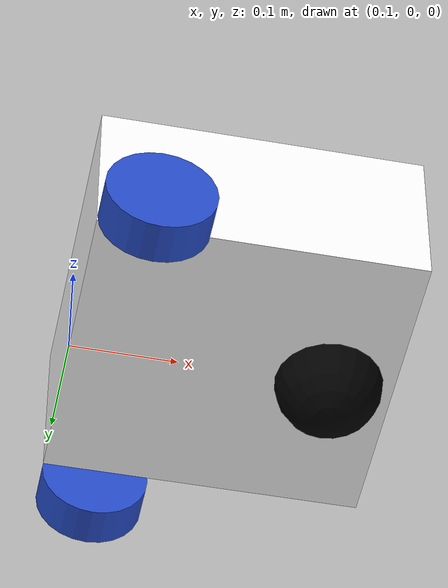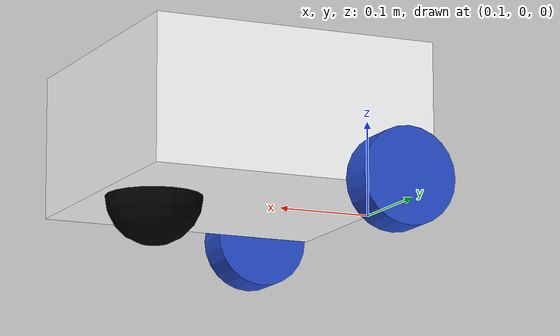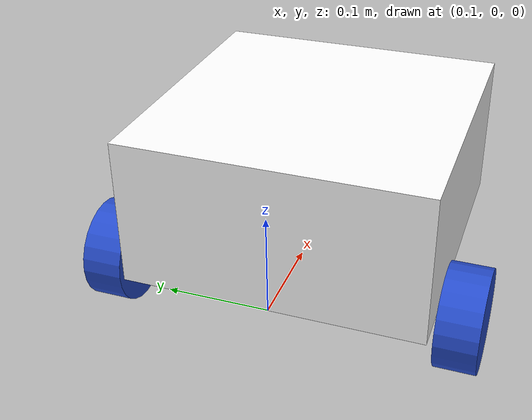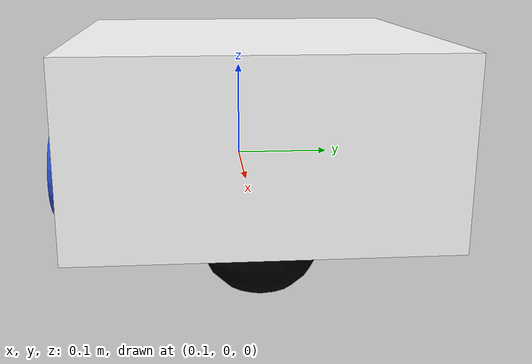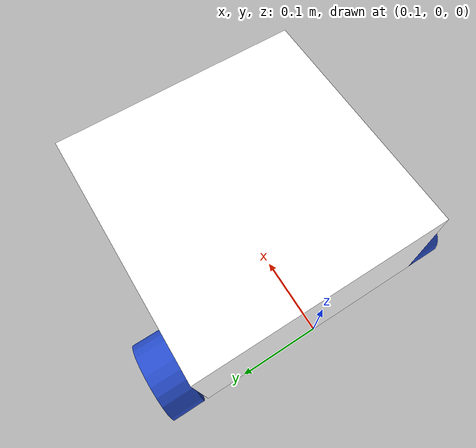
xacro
<?xml version="1.0"?>
<robot xmlns:xacro="http://www.ros.org/wiki/xacro">

    <xacro:include filename="inertial_macros.xacro"/>

    <material name = "white">
        <color rgba="1 1 1 1"/>
    </material>
    <material name = "orange">
        <color rgba="1 0.3 0.1 1"/>
    </material>
    <material name = "blue">
        <color rgba="0.2 0.2 1 1"/>
    </material>
    <material name = "black">
        <color rgba="0 0 0 1"/>
    </material>

    <!-- base link-->
    <link name="base_link">

    </link>

    <!-- chassis link-->

    <joint name="chassis_joint" type="fixed">
        <parent link="base_link"/>
        <child link="chassis"/>
        <origin xyz="0.1 0.0 0.0"/>
    </joint>

    <link name="chassis">
        <visual>
            <origin xyz="0.15 0.0 0.075"/>
            <geometry>
                <box size="0.3 0.3 0.15"/>
            </geometry>
            <material name="white"/>
        </visual>
        <collision>
            <origin xyz="0.15 0.0 0.075"/>
            <geometry>
                <box size="0.3 0.3 0.15"/>
            </geometry>
            <material name="white"/>
        </collision>
        <xacro:inertial_box mass="0.5" x="0.3" y="0.3" z="0.15">
            <origin xyz="0.15 0.0 0.75" rpy="0.0 0.0 0.0"/>

        </xacro:inertial_box>
    </link>
    <gazebo reference="chassis">
        <material>
            Gazebo/White
        </material>
    </gazebo>

    <!-- Left wheel link-->

    <joint name='left_wheel_joint' type='continuous'>
        <parent link="base_link"/>
        <child link="left_wheel"/>
        <origin xyz="0.15 0.175 0.0" rpy="-${pi/2} 0.0 0.0"/>
        <axis xyz="0.0 0.0 1.0"/>

    </joint>

    <link name="left_wheel">
        <visual>
            <geometry>
                <cylinder radius="0.05" length="0.04"/>
            </geometry>
            <materal name = "blue"/>
        </visual>
        <collision>
            <geometry>
                <cylinder radius="0.05" length="0.04"/>
            </geometry>
            <materal name = "blue"/>
        </collision>
        <xacro:inertial_cylinder mass="0.1" radius="0.05" length="0.04">
            <origin xyz="0.0 0.0 0.0" rpy="0.0 0.0 0.0"/>
        </xacro:inertial_cylinder>
    </link>
    <gazebo reference="left_wheel">
        <material>
            Gazebo/Blue
        </material>
    </gazebo>

    <!-- Right wheel link-->

    <joint name='right_wheel_joint' type='continuous'>
        <parent link="base_link"/>
        <child link="right_wheel"/>
        <origin xyz="0.15 -0.175 0.0" rpy="${pi/2} 0.0 0.0"/>
        <axis xyz="0.0 0.0 1.0"/>

    </joint>

    <link name="right_wheel">
        <visual>
            <geometry>
                <cylinder radius="0.05" length="0.04"/>
            </geometry>
            <materal name = "blue"/>
        </visual>
        <collision>
            <geometry>
                <cylinder radius="0.05" length="0.04"/>
            </geometry>
            <materal name = "blue"/>
        </collision>
        <xacro:inertial_cylinder mass="0.1" radius="0.05" length="0.04">
            <origin xyz="0.0 0.0 0.0" rpy="0.0 0.0 0.0"/>
        </xacro:inertial_cylinder>
    </link>
    <gazebo reference="right_wheel">
        <material>
            Gazebo/Blue
        </material>
    </gazebo>

    <!-- caster wheel link-->

    <joint name='caster_wheel_joint' type='fixed'>
        <parent link="chassis"/>
        <child link="caster_wheel"/>
        <origin xyz="0.24 0.0 0.0" rpy="0.0 0.0 0.0"/>

    </joint>

    <link name="caster_wheel">
        <visual>
            <geometry>
                <sphere radius="0.05"/>
            </geometry>
            <material name="black"/>
        </visual>
        <collision>
            <geometry>
                <sphere radius="0.05"/>
            </geometry>
            <material name="black"/>
        </collision>
        <xacro:inertial_sphere mass="0.1" radius="0.05">
            <origin xyz="0.0 0.0 0.0" rpy="0.0 0.0 0.0"/>

        </xacro:inertial_sphere>
    </link>
    <gazebo reference="caster_wheel">
        <material>
            Gazebo/Black
        </material>
        <mu1 value="0.001"/>
        <mu2 value="0.001"/>
    </gazebo>
</robot>
